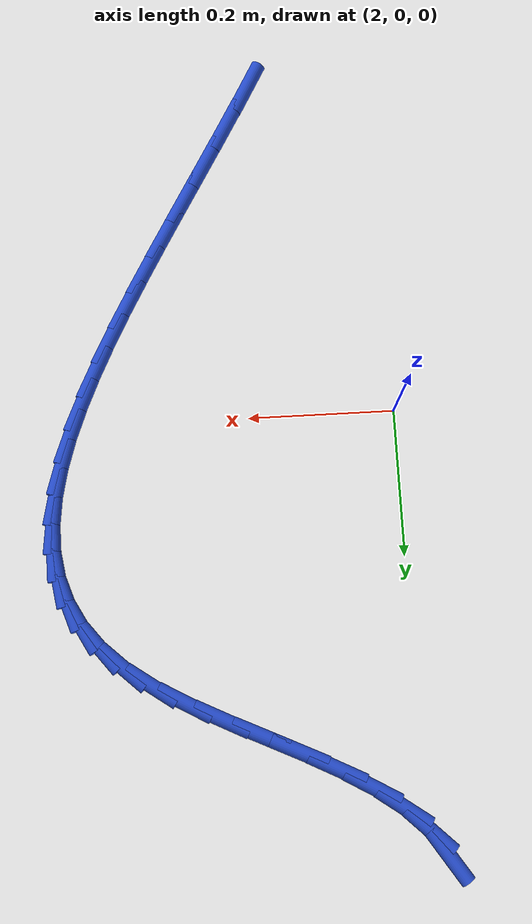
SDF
<sdf version="1.6">
 <world name="default">
  <model name="ground_plane">
   <static>1</static>
   <link name="link">
    <collision name="collision">
     <geometry><plane><normal>0 0 1</normal><size>100 100</size></plane></geometry>
     <surface><friction><ode><mu>100</mu><mu2>50</mu2></ode></friction></surface>
    </collision>
    <visual name="visual">
     <cast_shadows>0</cast_shadows>
     <geometry><plane><normal>0 0 1</normal><size>100 100</size></plane></geometry>
     <material>
      <script><uri>file://media/materials/scripts/gazebo.material</uri><name>Gazebo/WhiteGlow</name></script>
     </material>
    </visual>
   </link>
  </model>
  <model name="line">
   <link name="link_79">
    <pose>1.973092229551928 0.5874469258354396 0.01 0 1.57 -0.9852000687157021</pose>
    <collision name="collision">
     <geometry><cylinder><radius>0.01</radius><length>0.08</length></cylinder></geometry>
    </collision>
    <visual name="visual">
     <material>
      <script><name>Gazebo/Blue</name><uri>file://media/materials/scripts/gazebo.material</uri></script>
     </material>
     <geometry><cylinder><radius>0.01</radius><length>0.08</length></cylinder></geometry>
    </visual>
   </link>
   <link name="link_80">
    <pose>1.9949762356224519 0.5544491498462002 0.01 0 1.57 -0.7637050661568695</pose>
    <collision name="collision">
     <geometry><cylinder><radius>0.01</radius><length>0.08</length></cylinder></geometry>
    </collision>
    <visual name="visual">
     <material>
      <script><name>Gazebo/Blue</name><uri>file://media/materials/scripts/gazebo.material</uri></script>
     </material>
     <geometry><cylinder><radius>0.01</radius><length>0.08</length></cylinder></geometry>
    </visual>
   </link>
   <link name="link_81">
    <pose>2.0261865796134777 0.5245643565463814 0.01 0 1.57 -0.6161809994394511</pose>
    <collision name="collision">
     <geometry><cylinder><radius>0.01</radius><length>0.08</length></cylinder></geometry>
    </collision>
    <visual name="visual">
     <material>
      <script><name>Gazebo/Blue</name><uri>file://media/materials/scripts/gazebo.material</uri></script>
     </material>
     <geometry><cylinder><radius>0.01</radius><length>0.08</length></cylinder></geometry>
    </visual>
   </link>
   <link name="link_82">
    <pose>2.0648091353923106 0.4972134368218371 0.01 0 1.57 -0.5222904254570231</pose>
    <collision name="collision">
     <geometry><cylinder><radius>0.01</radius><length>0.08</length></cylinder></geometry>
    </collision>
    <visual name="visual">
     <material>
      <script><name>Gazebo/Blue</name><uri>file://media/materials/scripts/gazebo.material</uri></script>
     </material>
     <geometry><cylinder><radius>0.01</radius><length>0.08</length></cylinder></geometry>
    </visual>
   </link>
   <link name="link_83">
    <pose>2.1089297768262583 0.47181728155842156 0.01 0 1.57 -0.4664643118954944</pose>
    <collision name="collision">
     <geometry><cylinder><radius>0.01</radius><length>0.08</length></cylinder></geometry>
    </collision>
    <visual name="visual">
     <material>
      <script><name>Gazebo/Blue</name><uri>file://media/materials/scripts/gazebo.material</uri></script>
     </material>
     <geometry><cylinder><radius>0.01</radius><length>0.08</length></cylinder></geometry>
    </visual>
   </link>
   <link name="link_84">
    <pose>2.1566343777826256 0.4477967816419896 0.01 0 1.57 -0.43965894056084803</pose>
    <collision name="collision">
     <geometry><cylinder><radius>0.01</radius><length>0.08</length></cylinder></geometry>
    </collision>
    <visual name="visual">
     <material>
      <script><name>Gazebo/Blue</name><uri>file://media/materials/scripts/gazebo.material</uri></script>
     </material>
     <geometry><cylinder><radius>0.01</radius><length>0.08</length></cylinder></geometry>
    </visual>
   </link>
   <link name="link_85">
    <pose>2.206008812128722 0.42457282795839507 0.01 0 1.57 -0.4379487183296495</pose>
    <collision name="collision">
     <geometry><cylinder><radius>0.01</radius><length>0.08</length></cylinder></geometry>
    </collision>
    <visual name="visual">
     <material>
      <script><name>Gazebo/Blue</name><uri>file://media/materials/scripts/gazebo.material</uri></script>
     </material>
     <geometry><cylinder><radius>0.01</radius><length>0.08</length></cylinder></geometry>
    </visual>
   </link>
   <link name="link_86">
    <pose>2.255138953731849 0.40156631139349286 0.01 0 1.57 -0.461641454257462</pose>
    <collision name="collision">
     <geometry><cylinder><radius>0.01</radius><length>0.08</length></cylinder></geometry>
    </collision>
    <visual name="visual">
     <material>
      <script><name>Gazebo/Blue</name><uri>file://media/materials/scripts/gazebo.material</uri></script>
     </material>
     <geometry><cylinder><radius>0.01</radius><length>0.08</length></cylinder></geometry>
    </visual>
   </link>
   <link name="link_87">
    <pose>2.302110676459318 0.3781981228331372 0.01 0 1.57 -0.5155390493074001</pose>
    <collision name="collision">
     <geometry><cylinder><radius>0.01</radius><length>0.08</length></cylinder></geometry>
    </collision>
    <visual name="visual">
     <material>
      <script><name>Gazebo/Blue</name><uri>file://media/materials/scripts/gazebo.material</uri></script>
     </material>
     <geometry><cylinder><radius>0.01</radius><length>0.08</length></cylinder></geometry>
    </visual>
   </link>
   <link name="link_88">
    <pose>2.3450098541784334 0.35388915316318226 0.01 0 1.57 -0.610193835177698</pose>
    <collision name="collision">
     <geometry><cylinder><radius>0.01</radius><length>0.08</length></cylinder></geometry>
    </collision>
    <visual name="visual">
     <material>
      <script><name>Gazebo/Blue</name><uri>file://media/materials/scripts/gazebo.material</uri></script>
     </material>
     <geometry><cylinder><radius>0.01</radius><length>0.08</length></cylinder></geometry>
    </visual>
   </link>
   <link name="link_89">
    <pose>2.3819424281879633 0.328065623278978 0.01 0 1.57 -0.7452869655760094</pose>
    <collision name="collision">
     <geometry><cylinder><radius>0.01</radius><length>0.08</length></cylinder></geometry>
    </collision>
    <visual name="visual">
     <material>
      <script><name>Gazebo/Blue</name><uri>file://media/materials/scripts/gazebo.material</uri></script>
     </material>
     <geometry><cylinder><radius>0.01</radius><length>0.08</length></cylinder></geometry>
    </visual>
   </link>
   <link name="link_90">
    <pose>2.411925951326789 0.30039588262998235 0.01 0 1.57 -0.9020865906434767</pose>
    <collision name="collision">
     <geometry><cylinder><radius>0.01</radius><length>0.08</length></cylinder></geometry>
    </collision>
    <visual name="visual">
     <material>
      <script><name>Gazebo/Blue</name><uri>file://media/materials/scripts/gazebo.material</uri></script>
     </material>
     <geometry><cylinder><radius>0.01</radius><length>0.08</length></cylinder></geometry>
    </visual>
   </link>
   <link name="link_91">
    <pose>2.4352444293134257 0.27088465684245794 0.01 0 1.57 -1.0727909337233112</pose>
    <collision name="collision">
     <geometry><cylinder><radius>0.01</radius><length>0.08</length></cylinder></geometry>
    </collision>
    <visual name="visual">
     <material>
      <script><name>Gazebo/Blue</name><uri>file://media/materials/scripts/gazebo.material</uri></script>
     </material>
     <geometry><cylinder><radius>0.01</radius><length>0.08</length></cylinder></geometry>
    </visual>
   </link>
   <link name="link_92">
    <pose>2.4522753168598155 0.23956149205959243 0.01 0 1.57 -1.2467214031221872</pose>
    <collision name="collision">
     <geometry><cylinder><radius>0.01</radius><length>0.08</length></cylinder></geometry>
    </collision>
    <visual name="visual">
     <material>
      <script><name>Gazebo/Blue</name><uri>file://media/materials/scripts/gazebo.material</uri></script>
     </material>
     <geometry><cylinder><radius>0.01</radius><length>0.08</length></cylinder></geometry>
    </visual>
   </link>
   <link name="link_93">
    <pose>2.4633960686779015 0.20645593442457544 0.01 0 1.57 -1.4118410546046563</pose>
    <collision name="collision">
     <geometry><cylinder><radius>0.01</radius><length>0.08</length></cylinder></geometry>
    </collision>
    <visual name="visual">
     <material>
      <script><name>Gazebo/Blue</name><uri>file://media/materials/scripts/gazebo.material</uri></script>
     </material>
     <geometry><cylinder><radius>0.01</radius><length>0.08</length></cylinder></geometry>
    </visual>
   </link>
   <link name="link_94">
    <pose>2.468984139479624 0.17159753008059456 0.01 0 1.57 -1.5589646119994758</pose>
    <collision name="collision">
     <geometry><cylinder><radius>0.01</radius><length>0.08</length></cylinder></geometry>
    </collision>
    <visual name="visual">
     <material>
      <script><name>Gazebo/Blue</name><uri>file://media/materials/scripts/gazebo.material</uri></script>
     </material>
     <geometry><cylinder><radius>0.01</radius><length>0.08</length></cylinder></geometry>
    </visual>
   </link>
   <link name="link_95">
    <pose>2.4694169839769264 0.13501582517083807 0.01 0 1.57 1.4577628848935802</pose>
    <collision name="collision">
     <geometry><cylinder><radius>0.01</radius><length>0.08</length></cylinder></geometry>
    </collision>
    <visual name="visual">
     <material>
      <script><name>Gazebo/Blue</name><uri>file://media/materials/scripts/gazebo.material</uri></script>
     </material>
     <geometry><cylinder><radius>0.01</radius><length>0.08</length></cylinder></geometry>
    </visual>
   </link>
   <link name="link_96">
    <pose>2.465072056881749 0.09674036583849423 0.01 0 1.57 1.3552369271446367</pose>
    <collision name="collision">
     <geometry><cylinder><radius>0.01</radius><length>0.08</length></cylinder></geometry>
    </collision>
    <visual name="visual">
     <material>
      <script><name>Gazebo/Blue</name><uri>file://media/materials/scripts/gazebo.material</uri></script>
     </material>
     <geometry><cylinder><radius>0.01</radius><length>0.08</length></cylinder></geometry>
    </visual>
   </link>
   <link name="link_97">
    <pose>2.456326812906034 0.056800698226751364 0.01 0 1.57 1.2728247302434434</pose>
    <collision name="collision">
     <geometry><cylinder><radius>0.01</radius><length>0.08</length></cylinder></geometry>
    </collision>
    <visual name="visual">
     <material>
      <script><name>Gazebo/Blue</name><uri>file://media/materials/scripts/gazebo.material</uri></script>
     </material>
     <geometry><cylinder><radius>0.01</radius><length>0.08</length></cylinder></geometry>
    </visual>
   </link>
   <link name="link_98">
    <pose>2.4435587067617233 0.015226368478796902 0.01 0 1.57 1.2075415752916292</pose>
    <collision name="collision">
     <geometry><cylinder><radius>0.01</radius><length>0.08</length></cylinder></geometry>
    </collision>
    <visual name="visual">
     <material>
      <script><name>Gazebo/Blue</name><uri>file://media/materials/scripts/gazebo.material</uri></script>
     </material>
     <geometry><cylinder><radius>0.01</radius><length>0.08</length></cylinder></geometry>
    </visual>
   </link>
   <link name="link_99">
    <pose>2.4271451931607584 -0.02795307726217937 0.01 0 1.57 1.1564905294754766</pose>
    <collision name="collision">
     <geometry><cylinder><radius>0.01</radius><length>0.08</length></cylinder></geometry>
    </collision>
    <visual name="visual">
     <material>
      <script><name>Gazebo/Blue</name><uri>file://media/materials/scripts/gazebo.material</uri></script>
     </material>
     <geometry><cylinder><radius>0.01</radius><length>0.08</length></cylinder></geometry>
    </visual>
   </link>
   <link name="link_100">
    <pose>2.4074637268150827 -0.07270809285298975 0.01 0 1.57 1.117195005848099</pose>
    <collision name="collision">
     <geometry><cylinder><radius>0.01</radius><length>0.08</length></cylinder></geometry>
    </collision>
    <visual name="visual">
     <material>
      <script><name>Gazebo/Blue</name><uri>file://media/materials/scripts/gazebo.material</uri></script>
     </material>
     <geometry><cylinder><radius>0.01</radius><length>0.08</length></cylinder></geometry>
    </visual>
   </link>
   <link name="link_101">
    <pose>2.3848917624366366 -0.11900913215044608 0.01 0 1.57 1.0876639595951156</pose>
    <collision name="collision">
     <geometry><cylinder><radius>0.01</radius><length>0.08</length></cylinder></geometry>
    </collision>
    <visual name="visual">
     <material>
      <script><name>Gazebo/Blue</name><uri>file://media/materials/scripts/gazebo.material</uri></script>
     </material>
     <geometry><cylinder><radius>0.01</radius><length>0.08</length></cylinder></geometry>
    </visual>
   </link>
   <link name="link_102">
    <pose>2.359806754737362 -0.16682664901136002 0.01 0 1.57 1.0663483174347654</pose>
    <collision name="collision">
     <geometry><cylinder><radius>0.01</radius><length>0.08</length></cylinder></geometry>
    </collision>
    <visual name="visual">
     <material>
      <script><name>Gazebo/Blue</name><uri>file://media/materials/scripts/gazebo.material</uri></script>
     </material>
     <geometry><cylinder><radius>0.01</radius><length>0.08</length></cylinder></geometry>
    </visual>
   </link>
   <link name="link_103">
    <pose>2.3325861584292005 -0.21613109729254437 0.01 0 1.57 1.0520666024061351</pose>
    <collision name="collision">
     <geometry><cylinder><radius>0.01</radius><length>0.08</length></cylinder></geometry>
    </collision>
    <visual name="visual">
     <material>
      <script><name>Gazebo/Blue</name><uri>file://media/materials/scripts/gazebo.material</uri></script>
     </material>
     <geometry><cylinder><radius>0.01</radius><length>0.08</length></cylinder></geometry>
    </visual>
   </link>
   <link name="link_104">
    <pose>2.303607428224095 -0.2668929308508089 0.01 0 1.57 1.0439317083903372</pose>
    <collision name="collision">
     <geometry><cylinder><radius>0.01</radius><length>0.08</length></cylinder></geometry>
    </collision>
    <visual name="visual">
     <material>
      <script><name>Gazebo/Blue</name><uri>file://media/materials/scripts/gazebo.material</uri></script>
     </material>
     <geometry><cylinder><radius>0.01</radius><length>0.08</length></cylinder></geometry>
    </visual>
   </link>
   <link name="link_105">
    <pose>2.273248018833986 -0.31908260354296614 0.01 0 1.57 1.0412891699376279</pose>
    <collision name="collision">
     <geometry><cylinder><radius>0.01</radius><length>0.08</length></cylinder></geometry>
    </collision>
    <visual name="visual">
     <material>
      <script><name>Gazebo/Blue</name><uri>file://media/materials/scripts/gazebo.material</uri></script>
     </material>
     <geometry><cylinder><radius>0.01</radius><length>0.08</length></cylinder></geometry>
    </visual>
   </link>
   <link name="link_106">
    <pose>2.241885384970817 -0.3726705692258281 0.01 0 1.57 1.0436683856838695</pose>
    <collision name="collision">
     <geometry><cylinder><radius>0.01</radius><length>0.08</length></cylinder></geometry>
    </collision>
    <visual name="visual">
     <material>
      <script><name>Gazebo/Blue</name><uri>file://media/materials/scripts/gazebo.material</uri></script>
     </material>
     <geometry><cylinder><radius>0.01</radius><length>0.08</length></cylinder></geometry>
    </visual>
   </link>
   <link name="link_107">
    <pose>2.2098969813465286 -0.42762728175620623 0.01 0 1.57 1.0507451243789008</pose>
    <collision name="collision">
     <geometry><cylinder><radius>0.01</radius><length>0.08</length></cylinder></geometry>
    </collision>
    <visual name="visual">
     <material>
      <script><name>Gazebo/Blue</name><uri>file://media/materials/scripts/gazebo.material</uri></script>
     </material>
     <geometry><cylinder><radius>0.01</radius><length>0.08</length></cylinder></geometry>
    </visual>
   </link>
   <link name="link_108">
    <pose>2.1776602626730615 -0.4839231949909122 0.01 0 1.57 1.0623128619782123</pose>
    <collision name="collision">
     <geometry><cylinder><radius>0.01</radius><length>0.08</length></cylinder></geometry>
    </collision>
    <visual name="visual">
     <material>
      <script><name>Gazebo/Blue</name><uri>file://media/materials/scripts/gazebo.material</uri></script>
     </material>
     <geometry><cylinder><radius>0.01</radius><length>0.08</length></cylinder></geometry>
    </visual>
   </link>
  </model>
 </world>
</sdf>
